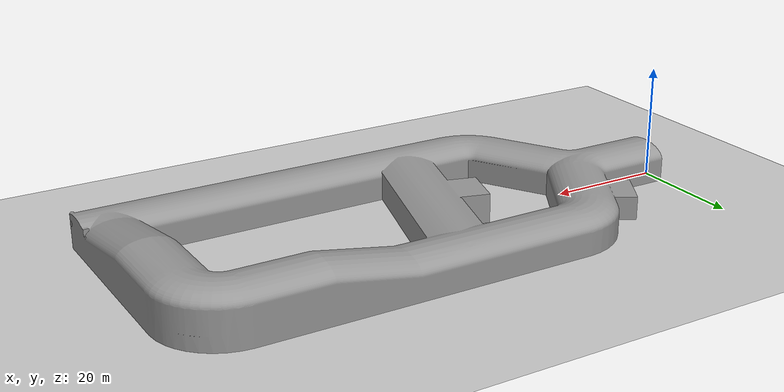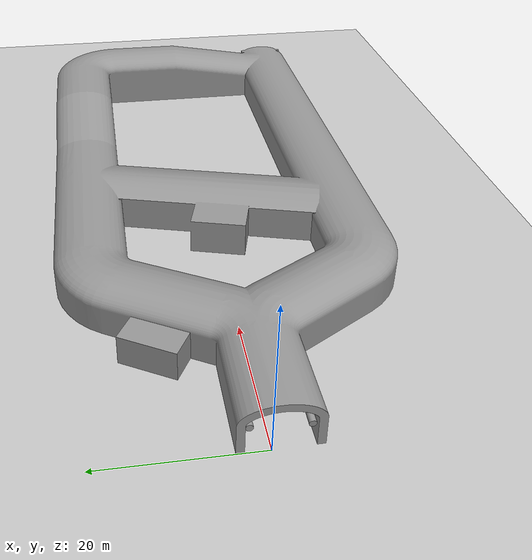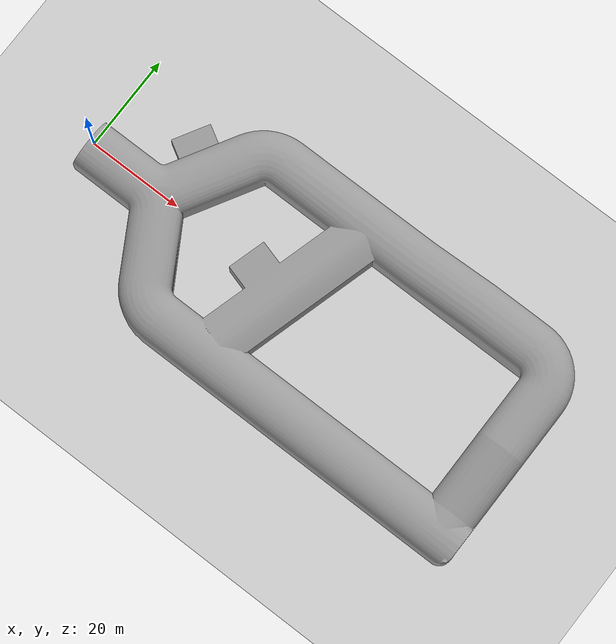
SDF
<sdf version="1.6">
 <world name="default">
  <light name="sun" type="directional">
   <pose>0 0 10 0 -0 0</pose>
   <diffuse>0.8 0.8 0.8 1</diffuse>
   <specular>0.2 0.2 0.2 1</specular>
   <attenuation>
    <range>1000</range>
    <constant>0.9</constant>
    <linear>0.01</linear>
    <quadratic>0.001</quadratic>
   </attenuation>
   <direction>-0.5 0.1 -0.9</direction>
  </light>
  <model name="ground_plane">
   <static>1</static>
   <link name="link">
    <collision name="collision">
     <geometry><plane><normal>0 0 1</normal><size>100 100</size></plane></geometry>
     <surface><friction><ode><mu>100</mu><mu2>50</mu2></ode></friction></surface>
    </collision>
    <visual name="visual">
     <cast_shadows>0</cast_shadows>
     <geometry><plane><normal>0 0 1</normal><size>100 100</size></plane></geometry>
    </visual>
   </link>
  </model>
  <gravity>0 0 -9.8</gravity>
  <magnetic_field>6e-06 2.3e-05 -4.2e-05</magnetic_field>
  <atmosphere type="adiabatic"/>
  <physics name="default_physics" default="0" type="ode">
   <max_step_size>0.001</max_step_size>
   <real_time_factor>1</real_time_factor>
   <real_time_update_rate>1000</real_time_update_rate>
  </physics>
  <scene><ambient>0.4 0.4 0.4 1</ambient><background>0.7 0.7 0.7 1</background><shadows>1</shadows></scene>
  <audio><device>default</device></audio>
  <spherical_coordinates>
   <surface_model>EARTH_WGS84</surface_model>
   <latitude_deg>0</latitude_deg>
   <longitude_deg>0</longitude_deg>
   <elevation>0</elevation>
   <heading_deg>0</heading_deg>
  </spherical_coordinates>
  <model name="hangdao">
   <link name="hangdao::link_0">
    <inertial>
     <mass>1e-08</mass>
     <inertia>
      <ixx>0.166667</ixx>
      <ixy>0</ixy>
      <ixz>0</ixz>
      <iyy>0.166667</iyy>
      <iyz>0</iyz>
      <izz>0.166667</izz>
     </inertia>
    </inertial>
    <pose>-2e-05 3e-06 0 0 -0 0</pose>
    <visual name="visual">
     <geometry>
      <mesh><uri>/home/xu/A_husky/src/husky/husky_gazebo/worlds/hangdao/hangdao.dae</uri><scale>1 1 1</scale></mesh>
     </geometry>
     <material>
      <lighting>1</lighting>
      <script><uri>file://media/materials/scripts/gazebo.material</uri><name>Gazebo/Grey</name></script>
     </material>
    </visual>
    <collision name="collision">
     <geometry>
      <mesh><uri>/home/xu/A_husky/src/husky/husky_gazebo/worlds/hangdao/hangdao.dae</uri><scale>1 1 1</scale></mesh>
     </geometry>
     <surface>
      <friction>
       <ode><mu>1</mu><mu2>1</mu2><fdir1>0 0 0</fdir1><slip1>0</slip1><slip2>0</slip2></ode>
       <torsional>
        <coefficient>1</coefficient>
        <patch_radius>0</patch_radius>
        <surface_radius>0</surface_radius>
        <use_patch_radius>1</use_patch_radius>
        <ode><slip>0</slip></ode>
       </torsional>
      </friction>
      <bounce><restitution_coefficient>0</restitution_coefficient><threshold>1e+06</threshold></bounce>
      <contact>
       <collide_without_contact>0</collide_without_contact>
       <collide_without_contact_bitmask>1</collide_without_contact_bitmask>
       <collide_bitmask>1</collide_bitmask>
       <ode>
        <soft_cfm>0</soft_cfm>
        <soft_erp>0.2</soft_erp>
        <kp>1e+13</kp>
        <kd>1</kd>
        <max_vel>0.01</max_vel>
        <min_depth>0</min_depth>
       </ode>
       <bullet>
        <split_impulse>1</split_impulse>
        <split_impulse_penetration_threshold>-0.01</split_impulse_penetration_threshold>
        <soft_cfm>0</soft_cfm>
        <soft_erp>0.2</soft_erp>
        <kp>1e+13</kp>
        <kd>1</kd>
       </bullet>
      </contact>
     </surface>
    </collision>
   </link>
   <static>1</static>
   <pose>0 24 0 0 0 -1.57</pose>
  </model>
  <light name="user_point_light_0" type="point">
   <pose>17.8312 -0.966396 1 0 -0 0</pose>
   <diffuse>0.5 0.5 0.5 1</diffuse>
   <specular>0.1 0.1 0.1 1</specular>
   <attenuation>
    <range>20</range>
    <constant>0.5</constant>
    <linear>0.01</linear>
    <quadratic>0.001</quadratic>
   </attenuation>
   <cast_shadows>0</cast_shadows>
   <direction>0 0 -1</direction>
  </light>
  <light name="user_point_light_1" type="point">
   <pose>6.00042 -0.731883 1 0 -0 0</pose>
   <diffuse>0.5 0.5 0.5 1</diffuse>
   <specular>0.1 0.1 0.1 1</specular>
   <attenuation>
    <range>20</range>
    <constant>0.5</constant>
    <linear>0.01</linear>
    <quadratic>0.001</quadratic>
   </attenuation>
   <cast_shadows>0</cast_shadows>
   <direction>0 0 -1</direction>
  </light>
  <light name="user_point_light_2" type="point">
   <pose>24.638 13.0518 1 0 -0 0</pose>
   <diffuse>0.5 0.5 0.5 1</diffuse>
   <specular>0.1 0.1 0.1 1</specular>
   <attenuation>
    <range>20</range>
    <constant>0.5</constant>
    <linear>0.01</linear>
    <quadratic>0.001</quadratic>
   </attenuation>
   <cast_shadows>0</cast_shadows>
   <direction>0 0 -1</direction>
  </light>
  <light name="user_point_light_3" type="point">
   <pose>26.0858 -16.8172 1 0 -0 0</pose>
   <diffuse>0.5 0.5 0.5 1</diffuse>
   <specular>0.1 0.1 0.1 1</specular>
   <attenuation>
    <range>20</range>
    <constant>0.5</constant>
    <linear>0.01</linear>
    <quadratic>0.001</quadratic>
   </attenuation>
   <cast_shadows>0</cast_shadows>
   <direction>0 0 -1</direction>
  </light>
  <light name="user_point_light_4" type="point">
   <pose>50.0139 18.1167 1 0 -0 0</pose>
   <diffuse>0.5 0.5 0.5 1</diffuse>
   <specular>0.1 0.1 0.1 1</specular>
   <attenuation>
    <range>20</range>
    <constant>0.5</constant>
    <linear>0.01</linear>
    <quadratic>0.001</quadratic>
   </attenuation>
   <cast_shadows>0</cast_shadows>
   <direction>0 0 -1</direction>
  </light>
  <light name="user_point_light_5" type="point">
   <pose>46.8086 -0.566852 1 0 -0 0</pose>
   <diffuse>0.5 0.5 0.5 1</diffuse>
   <specular>0.1 0.1 0.1 1</specular>
   <attenuation>
    <range>20</range>
    <constant>0.5</constant>
    <linear>0.01</linear>
    <quadratic>0.001</quadratic>
   </attenuation>
   <cast_shadows>0</cast_shadows>
   <direction>0 0 -1</direction>
  </light>
  <light name="user_point_light_6" type="point">
   <pose>41.9086 -18.8385 1 0 -0 0</pose>
   <diffuse>0.5 0.5 0.5 1</diffuse>
   <specular>0.1 0.1 0.1 1</specular>
   <attenuation>
    <range>20</range>
    <constant>0.5</constant>
    <linear>0.01</linear>
    <quadratic>0.001</quadratic>
   </attenuation>
   <cast_shadows>0</cast_shadows>
   <direction>0 0 -1</direction>
  </light>
  <light name="user_point_light_7" type="point">
   <pose>59.2735 -19.2199 1 0 -0 0</pose>
   <diffuse>0.5 0.5 0.5 1</diffuse>
   <specular>0.1 0.1 0.1 1</specular>
   <attenuation>
    <range>20</range>
    <constant>0.5</constant>
    <linear>0.01</linear>
    <quadratic>0.001</quadratic>
   </attenuation>
   <cast_shadows>0</cast_shadows>
   <direction>0 0 -1</direction>
  </light>
  <light name="user_point_light_8" type="point">
   <pose>75.0445 -19.2321 1 0 -0 0</pose>
   <diffuse>0.5 0.5 0.5 1</diffuse>
   <specular>0.1 0.1 0.1 1</specular>
   <attenuation>
    <range>20</range>
    <constant>0.5</constant>
    <linear>0.01</linear>
    <quadratic>0.001</quadratic>
   </attenuation>
   <cast_shadows>0</cast_shadows>
   <direction>0 0 -1</direction>
  </light>
  <light name="user_point_light_9" type="point">
   <pose>93.5256 -19.5946 1 0 -0 0</pose>
   <diffuse>0.5 0.5 0.5 1</diffuse>
   <specular>0.1 0.1 0.1 1</specular>
   <attenuation>
    <range>20</range>
    <constant>0.5</constant>
    <linear>0.01</linear>
    <quadratic>0.001</quadratic>
   </attenuation>
   <cast_shadows>0</cast_shadows>
   <direction>0 0 -1</direction>
  </light>
  <light name="user_point_light_10" type="point">
   <pose>67.0501 17.9549 1 0 -0 0</pose>
   <diffuse>0.5 0.5 0.5 1</diffuse>
   <specular>0.1 0.1 0.1 1</specular>
   <attenuation>
    <range>20</range>
    <constant>0.5</constant>
    <linear>0.01</linear>
    <quadratic>0.001</quadratic>
   </attenuation>
   <cast_shadows>0</cast_shadows>
   <direction>0 0 -1</direction>
  </light>
  <light name="user_point_light_11" type="point">
   <pose>88.6678 17.7042 1 0 -0 0</pose>
   <diffuse>0.5 0.5 0.5 1</diffuse>
   <specular>0.1 0.1 0.1 1</specular>
   <attenuation>
    <range>20</range>
    <constant>0.5</constant>
    <linear>0.01</linear>
    <quadratic>0.001</quadratic>
   </attenuation>
   <cast_shadows>0</cast_shadows>
   <direction>0 0 -1</direction>
  </light>
  <light name="user_point_light_12" type="point">
   <pose>96.2336 0.570116 1 0 -0 0</pose>
   <diffuse>0.5 0.5 0.5 1</diffuse>
   <specular>0.1 0.1 0.1 1</specular>
   <attenuation>
    <range>20</range>
    <constant>0.5</constant>
    <linear>0.01</linear>
    <quadratic>0.001</quadratic>
   </attenuation>
   <cast_shadows>0</cast_shadows>
   <direction>0 0 -1</direction>
  </light>
  <model name="unit_cylinder">
   <pose>6.13037 -4.54184 3.06955 2.15728 -1.45317 -2.15329</pose>
   <link name="unit_cylinder::link">
    <inertial>
     <mass>1</mass>
     <inertia><ixx>0.145833</ixx><ixy>0</ixy><ixz>0</ixz><iyy>0.145833</iyy><iyz>0</iyz><izz>0.125</izz></inertia>
    </inertial>
    <collision name="collision">
     <geometry><cylinder><radius>0.449035</radius><length>11.1097</length></cylinder></geometry>
    </collision>
    <visual name="visual">
     <geometry><cylinder><radius>0.449035</radius><length>11.1097</length></cylinder></geometry>
     <material>
      <script><name>Gazebo/Grey</name><uri>file://media/materials/scripts/gazebo.material</uri></script>
     </material>
    </visual>
   </link>
  </model>
  <model name="unit_cylinder_clone">
   <pose>6.1662 2.41666 2.99999 -1.41211 -1.47135 1.41371</pose>
   <link name="unit_cylinder_clone::unit_cylinder::link">
    <inertial>
     <mass>1</mass>
     <inertia><ixx>0.145833</ixx><ixy>0</ixy><ixz>0</ixz><iyy>0.145833</iyy><iyz>0</iyz><izz>0.125</izz></inertia>
    </inertial>
    <collision name="collision">
     <geometry><cylinder><radius>0.449034</radius><length>11.1097</length></cylinder></geometry>
    </collision>
    <visual name="visual">
     <geometry><cylinder><radius>0.449034</radius><length>11.1097</length></cylinder></geometry>
     <material>
      <script><name>Gazebo/Grey</name><uri>file://media/materials/scripts/gazebo.material</uri></script>
     </material>
    </visual>
   </link>
  </model>
  <model name="unit_cylinder_clone_clone">
   <pose>25.1488 7.04097 3 1.51052 -1.27594 -0.470651</pose>
   <link name="unit_cylinder_clone_clone::unit_cylinder_clone::unit_cylinder::link">
    <inertial>
     <mass>1</mass>
     <inertia><ixx>0.145833</ixx><ixy>0</ixy><ixz>0</ixz><iyy>0.145833</iyy><iyz>0</iyz><izz>0.125</izz></inertia>
    </inertial>
    <collision name="collision">
     <geometry><cylinder><radius>0.449034</radius><length>18.0448</length></cylinder></geometry>
    </collision>
    <visual name="visual">
     <geometry><cylinder><radius>0.449034</radius><length>18.0448</length></cylinder></geometry>
     <material>
      <script><name>Gazebo/Grey</name><uri>file://media/materials/scripts/gazebo.material</uri></script>
     </material>
    </visual>
   </link>
  </model>
  <model name="unit_cylinder_clone_clone_clone">
   <pose>24.8868 -8.30913 2.99283 1.57118 -1.52117 0.53452</pose>
   <link name="unit_cylinder_clone_clone_clone::unit_cylinder_clone_clone::unit_cylinder_clone::unit_cylinder::link">
    <inertial>
     <mass>1</mass>
     <inertia><ixx>0.145833</ixx><ixy>0</ixy><ixz>0</ixz><iyy>0.145833</iyy><iyz>0</iyz><izz>0.125</izz></inertia>
    </inertial>
    <collision name="collision">
     <geometry><cylinder><radius>0.449034</radius><length>14.6397</length></cylinder></geometry>
    </collision>
    <visual name="visual">
     <geometry><cylinder><radius>0.449034</radius><length>14.6397</length></cylinder></geometry>
     <material>
      <script><name>Gazebo/Grey</name><uri>file://media/materials/scripts/gazebo.material</uri></script>
     </material>
    </visual>
   </link>
  </model>
  <model name="unit_cylinder_0">
   <pose>65.1029 -21.8565 3.06583 1.62694 -0.772948 -1.59755</pose>
   <link name="unit_cylinder_0::link">
    <inertial>
     <mass>1</mass>
     <inertia><ixx>0.145833</ixx><ixy>0</ixy><ixz>0</ixz><iyy>0.145833</iyy><iyz>0</iyz><izz>0.125</izz></inertia>
    </inertial>
    <collision name="collision">
     <geometry><cylinder><radius>0.5</radius><length>72.0991</length></cylinder></geometry>
    </collision>
    <visual name="visual">
     <geometry><cylinder><radius>0.5</radius><length>72.0991</length></cylinder></geometry>
     <material>
      <script><name>Gazebo/Grey</name><uri>file://media/materials/scripts/gazebo.material</uri></script>
     </material>
    </visual>
   </link>
  </model>
  <model name="unit_box">
   <pose>40.9239 -8.88048 0.5 1e-06 -2e-06 -0.090168</pose>
   <link name="link">
    <inertial>
     <mass>1</mass>
     <inertia>
      <ixx>0.166667</ixx>
      <ixy>0</ixy>
      <ixz>0</ixz>
      <iyy>0.166667</iyy>
      <iyz>0</iyz>
      <izz>0.166667</izz>
     </inertia>
    </inertial>
    <collision name="collision"><geometry><box><size>1 1 1</size></box></geometry></collision>
    <visual name="visual">
     <geometry><box><size>1 1 1</size></box></geometry>
     <material>
      <script><name>Gazebo/Grey</name><uri>file://media/materials/scripts/gazebo.material</uri></script>
     </material>
    </visual>
   </link>
  </model>
  <model name="unit_box_0">
   <pose>41.0738 -9.17547 1.5 6e-06 -2e-06 0.00612</pose>
   <link name="link">
    <inertial>
     <mass>1</mass>
     <inertia>
      <ixx>0.166667</ixx>
      <ixy>0</ixy>
      <ixz>0</ixz>
      <iyy>0.166667</iyy>
      <iyz>0</iyz>
      <izz>0.166667</izz>
     </inertia>
    </inertial>
    <collision name="collision"><geometry><box><size>1 1 1</size></box></geometry></collision>
    <visual name="visual">
     <geometry><box><size>1 1 1</size></box></geometry>
     <material>
      <script><name>Gazebo/Grey</name><uri>file://media/materials/scripts/gazebo.material</uri></script>
     </material>
    </visual>
   </link>
  </model>
  <model name="unit_box_1">
   <pose>42.1456 -8.84508 0.499996 0 9e-06 0.763489</pose>
   <link name="link">
    <inertial>
     <mass>1</mass>
     <inertia>
      <ixx>0.166667</ixx>
      <ixy>0</ixy>
      <ixz>0</ixz>
      <iyy>0.166667</iyy>
      <iyz>0</iyz>
      <izz>0.166667</izz>
     </inertia>
    </inertial>
    <collision name="collision"><geometry><box><size>1 1 1</size></box></geometry></collision>
    <visual name="visual">
     <geometry><box><size>1 1 1</size></box></geometry>
     <material>
      <script><name>Gazebo/Grey</name><uri>file://media/materials/scripts/gazebo.material</uri></script>
     </material>
    </visual>
   </link>
  </model>
  <model name="unit_box_2">
   <pose>51.5114 3.87047 0.5 0 -0 7.9e-05</pose>
   <link name="link">
    <inertial>
     <mass>1</mass>
     <inertia>
      <ixx>0.166667</ixx>
      <ixy>0</ixy>
      <ixz>0</ixz>
      <iyy>0.166667</iyy>
      <iyz>0</iyz>
      <izz>0.166667</izz>
     </inertia>
    </inertial>
    <collision name="collision"><geometry><box><size>1 1 1</size></box></geometry></collision>
    <visual name="visual">
     <geometry><box><size>1 1 1</size></box></geometry>
     <material>
      <script><name>Gazebo/Grey</name><uri>file://media/materials/scripts/gazebo.material</uri></script>
     </material>
    </visual>
   </link>
  </model>
  <model name="unit_box_3">
   <pose>51.5763 6.12482 0.5 0 -0 0.654505</pose>
   <link name="link">
    <inertial>
     <mass>1</mass>
     <inertia>
      <ixx>0.166667</ixx>
      <ixy>0</ixy>
      <ixz>0</ixz>
      <iyy>0.166667</iyy>
      <iyz>0</iyz>
      <izz>0.166667</izz>
     </inertia>
    </inertial>
    <collision name="collision"><geometry><box><size>1 1 1</size></box></geometry></collision>
    <visual name="visual">
     <geometry><box><size>1 1 1</size></box></geometry>
     <material>
      <script><name>Gazebo/Grey</name><uri>file://media/materials/scripts/gazebo.material</uri></script>
     </material>
    </visual>
   </link>
  </model>
  <model name="unit_box_4">
   <pose>51.0756 3.5444 1.5 -3e-06 -1.6e-05 -0.291713</pose>
   <link name="link">
    <inertial>
     <mass>1</mass>
     <inertia>
      <ixx>0.166667</ixx>
      <ixy>0</ixy>
      <ixz>0</ixz>
      <iyy>0.166667</iyy>
      <iyz>0</iyz>
      <izz>0.166667</izz>
     </inertia>
    </inertial>
    <collision name="collision"><geometry><box><size>1 1 1</size></box></geometry></collision>
    <visual name="visual">
     <geometry><box><size>1 1 1</size></box></geometry>
     <material>
      <script><name>Gazebo/Grey</name><uri>file://media/materials/scripts/gazebo.material</uri></script>
     </material>
    </visual>
   </link>
  </model>
 </world>
</sdf>
